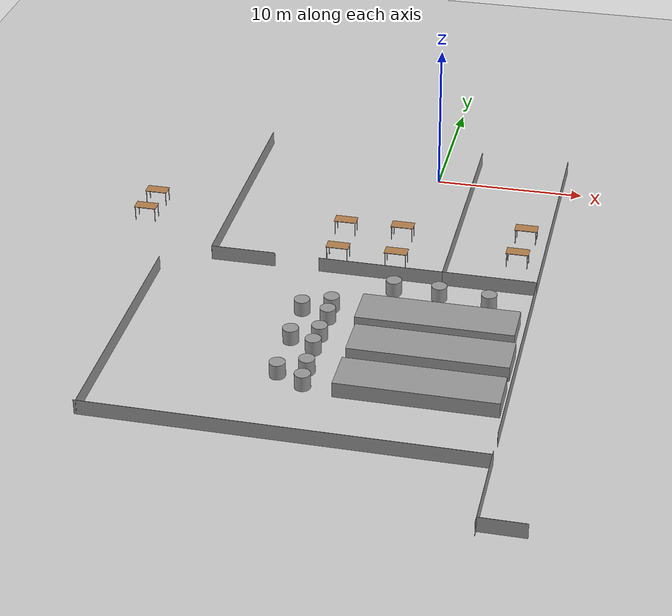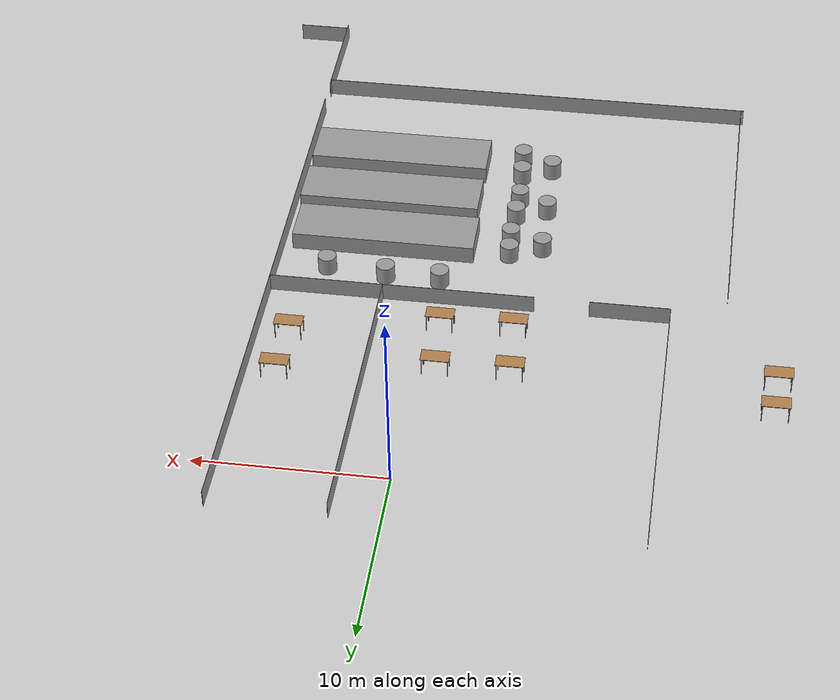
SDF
<sdf version="1.6">
 <world name="default">
  <model name="ground_plane">
   <static>1</static>
   <link name="link">
    <collision name="collision">
     <geometry><plane><normal>0 0 1</normal><size>100 100</size></plane></geometry>
     <surface>
      <contact><collide_bitmask>65535</collide_bitmask></contact>
      <friction><ode><mu>100</mu><mu2>50</mu2></ode></friction>
     </surface>
    </collision>
    <visual name="visual">
     <cast_shadows>0</cast_shadows>
     <geometry><plane><normal>0 0 1</normal><size>100 100</size></plane></geometry>
     <material>
      <script><uri>file://media/materials/scripts/gazebo.material</uri><name>Gazebo/Grey</name></script>
     </material>
    </visual>
   </link>
  </model>
  <model name="unit_box">
   <static>1</static>
   <pose>8.66348 -5.199 0.5 0 -0 0</pose>
   <link name="link">
    <inertial>
     <mass>1</mass>
     <inertia>
      <ixx>0.166667</ixx>
      <ixy>0</ixy>
      <ixz>0</ixz>
      <iyy>0.166667</iyy>
      <iyz>0</iyz>
      <izz>0.166667</izz>
     </inertia>
    </inertial>
    <collision name="collision"><geometry><box><size>0.01642 16.3082 1</size></box></geometry></collision>
    <visual name="visual">
     <geometry><box><size>0.01642 16.3082 1</size></box></geometry>
     <material>
      <script><name>Gazebo/Grey</name><uri>file://media/materials/scripts/gazebo.material</uri></script>
     </material>
    </visual>
   </link>
  </model>
  <model name="unit_box_0">
   <static>1</static>
   <pose>5.618314 -13.282811 0.5 0 -0 0</pose>
   <link name="link">
    <inertial>
     <mass>1</mass>
     <inertia>
      <ixx>0.166667</ixx>
      <ixy>0</ixy>
      <ixz>0</ixz>
      <iyy>0.166667</iyy>
      <iyz>0</iyz>
      <izz>0.166667</izz>
     </inertia>
    </inertial>
    <collision name="collision"><geometry><box><size>6.0747 0.010616 1</size></box></geometry></collision>
    <visual name="visual">
     <geometry><box><size>6.0747 0.010616 1</size></box></geometry>
     <material>
      <script><name>Gazebo/Grey</name><uri>file://media/materials/scripts/gazebo.material</uri></script>
     </material>
    </visual>
   </link>
  </model>
  <model name="unit_box_0_clone">
   <static>1</static>
   <pose>2.57442 -5.17191 0.5 0 -0 0</pose>
   <link name="link">
    <inertial>
     <mass>1</mass>
     <inertia>
      <ixx>0.166667</ixx>
      <ixy>0</ixy>
      <ixz>0</ixz>
      <iyy>0.166667</iyy>
      <iyz>0</iyz>
      <izz>0.166667</izz>
     </inertia>
    </inertial>
    <collision name="collision"><geometry><box><size>0.015785 16.224 1</size></box></geometry></collision>
    <visual name="visual">
     <geometry><box><size>0.015785 16.224 1</size></box></geometry>
     <material>
      <script><name>Gazebo/Grey</name><uri>file://media/materials/scripts/gazebo.material</uri></script>
     </material>
    </visual>
   </link>
  </model>
  <model name="unit_box_clone_clone_clone">
   <static>1</static>
   <pose>-1.4868 -13.287 0.5 0 -0 0</pose>
   <link name="link">
    <inertial>
     <mass>1</mass>
     <inertia>
      <ixx>0.166667</ixx>
      <ixy>0</ixy>
      <ixz>0</ixz>
      <iyy>0.166667</iyy>
      <iyz>0</iyz>
      <izz>0.166667</izz>
     </inertia>
    </inertial>
    <collision name="collision"><geometry><box><size>8.11356 0.014042 1</size></box></geometry></collision>
    <visual name="visual">
     <geometry><box><size>8.11356 0.014042 1</size></box></geometry>
     <material>
      <script><name>Gazebo/Grey</name><uri>file://media/materials/scripts/gazebo.material</uri></script>
     </material>
    </visual>
   </link>
  </model>
  <model name="unit_box_0_clone_clone">
   <static>1</static>
   <pose>-12.7381 -5.17234 0.5 0 -0 0</pose>
   <link name="link">
    <inertial>
     <mass>1</mass>
     <inertia>
      <ixx>0.166667</ixx>
      <ixy>0</ixy>
      <ixz>0</ixz>
      <iyy>0.166667</iyy>
      <iyz>0</iyz>
      <izz>0.166667</izz>
     </inertia>
    </inertial>
    <collision name="collision"><geometry><box><size>0.015785 16.224 1</size></box></geometry></collision>
    <visual name="visual">
     <geometry><box><size>0.015785 16.224 1</size></box></geometry>
     <material>
      <script><name>Gazebo/Grey</name><uri>file://media/materials/scripts/gazebo.material</uri></script>
     </material>
    </visual>
   </link>
  </model>
  <model name="unit_box_clone_clone_clone_2">
   <static>1</static>
   <pose>-3.5869 -31.4552 0.5 0 -0 0</pose>
   <link name="link">
    <inertial>
     <mass>1</mass>
     <inertia>
      <ixx>0.166667</ixx>
      <ixy>0</ixy>
      <ixz>0</ixz>
      <iyy>0.166667</iyy>
      <iyz>0</iyz>
      <izz>0.166667</izz>
     </inertia>
    </inertial>
    <collision name="collision"><geometry><box><size>24.508914 0.014042 1</size></box></geometry></collision>
    <visual name="visual">
     <geometry><box><size>24.5098914 0.014042 1</size></box></geometry>
     <material>
      <script><name>Gazebo/Grey</name><uri>file://media/materials/scripts/gazebo.material</uri></script>
     </material>
    </visual>
   </link>
  </model>
  <model name="unit_box_0_clone_clone_0_clone">
   <static>1</static>
   <pose>8.66604 -21.3952 0.5 0 -0 0</pose>
   <link name="link">
    <inertial>
     <mass>1</mass>
     <inertia>
      <ixx>0.166667</ixx>
      <ixy>0</ixy>
      <ixz>0</ixz>
      <iyy>0.166667</iyy>
      <iyz>0</iyz>
      <izz>0.166667</izz>
     </inertia>
    </inertial>
    <collision name="collision"><geometry><box><size>0.015785 16.224 1</size></box></geometry></collision>
    <visual name="visual">
     <geometry><box><size>0.015785 16.224 1</size></box></geometry>
     <material>
      <script><name>Gazebo/Grey</name><uri>file://media/materials/scripts/gazebo.material</uri></script>
     </material>
    </visual>
   </link>
  </model>
  <model name="unit_box_0_clone_clone_0_clone_clone">
   <static>1</static>
   <pose>8.66561 -34.2292 0.5 0 -0 0</pose>
   <link name="link">
    <inertial>
     <mass>1</mass>
     <inertia>
      <ixx>0.166667</ixx>
      <ixy>0</ixy>
      <ixz>0</ixz>
      <iyy>0.166667</iyy>
      <iyz>0</iyz>
      <izz>0.166667</izz>
     </inertia>
    </inertial>
    <collision name="collision"><geometry><box><size>0.015785 6.33435 1</size></box></geometry></collision>
    <visual name="visual">
     <geometry><box><size>0.015785 6.33435 1</size></box></geometry>
     <material>
      <script><name>Gazebo/Grey</name><uri>file://media/materials/scripts/gazebo.material</uri></script>
     </material>
    </visual>
   </link>
  </model>
  <model name="unit_box_clone_clone_clone_2_clone">
   <static>1</static>
   <pose>10.0717 -37.0022 0.5 0 -0 0</pose>
   <link name="link">
    <inertial>
     <mass>1</mass>
     <inertia>
      <ixx>0.166667</ixx>
      <ixy>0</ixy>
      <ixz>0</ixz>
      <iyy>0.166667</iyy>
      <iyz>0</iyz>
      <izz>0.166667</izz>
     </inertia>
    </inertial>
    <collision name="collision"><geometry><box><size>2.80525 0.014042 1</size></box></geometry></collision>
    <visual name="visual">
     <geometry><box><size>2.80525 0.014042 1</size></box></geometry>
     <material>
      <script><name>Gazebo/Grey</name><uri>file://media/materials/scripts/gazebo.material</uri></script>
     </material>
    </visual>
   </link>
  </model>
  <model name="unit_box_0_clone_clone_0_clone_0">
   <static>1</static>
   <pose>-15.6926 -23.3512 0.5 0 -0 0</pose>
   <link name="link">
    <inertial>
     <mass>1</mass>
     <inertia>
      <ixx>0.166667</ixx>
      <ixy>0</ixy>
      <ixz>0</ixz>
      <iyy>0.166667</iyy>
      <iyz>0</iyz>
      <izz>0.166667</izz>
     </inertia>
    </inertial>
    <collision name="collision"><geometry><box><size>0.015785 16.224 1</size></box></geometry></collision>
    <visual name="visual">
     <geometry><box><size>0.015785 16.224 1</size></box></geometry>
     <material>
      <script><name>Gazebo/Grey</name><uri>file://media/materials/scripts/gazebo.material</uri></script>
     </material>
    </visual>
   </link>
  </model>
  <model name="unit_box_clone_clone_clone_clone">
   <static>1</static>
   <pose>-10.6005 -13.2814 0.5 0 -0 0</pose>
   <link name="link">
    <inertial>
     <mass>1</mass>
     <inertia>
      <ixx>0.166667</ixx>
      <ixy>0</ixy>
      <ixz>0</ixz>
      <iyy>0.166667</iyy>
      <iyz>0</iyz>
      <izz>0.166667</izz>
     </inertia>
    </inertial>
    <collision name="collision"><geometry><box><size>4.2743 0.014042 1</size></box></geometry></collision>
    <visual name="visual">
     <geometry><box><size>4.2743 0.014042 1</size></box></geometry>
     <material>
      <script><name>Gazebo/Grey</name><uri>file://media/materials/scripts/gazebo.material</uri></script>
     </material>
    </visual>
   </link>
  </model>
  <model name="unit_box_2_clone">
   <static>1</static>
   <pose>3.38689 -21.6455 0.5 0 -0 0</pose>
   <link name="link">
    <inertial>
     <mass>1</mass>
     <inertia>
      <ixx>0.166667</ixx>
      <ixy>0</ixy>
      <ixz>0</ixz>
      <iyy>0.166667</iyy>
      <iyz>0</iyz>
      <izz>0.166667</izz>
     </inertia>
    </inertial>
    <collision name="collision"><geometry><box><size>9.96993 2.71748 1</size></box></geometry></collision>
    <visual name="visual">
     <geometry><box><size>9.96993 2.71748 1</size></box></geometry>
     <material>
      <script><name>Gazebo/Grey</name><uri>file://media/materials/scripts/gazebo.material</uri></script>
     </material>
    </visual>
   </link>
  </model>
  <model name="unit_box_2_clone_0">
   <static>1</static>
   <pose>3.39312 -25.3306 0.5 0 -0 0</pose>
   <link name="link">
    <inertial>
     <mass>1</mass>
     <inertia>
      <ixx>0.166667</ixx>
      <ixy>0</ixy>
      <ixz>0</ixz>
      <iyy>0.166667</iyy>
      <iyz>0</iyz>
      <izz>0.166667</izz>
     </inertia>
    </inertial>
    <collision name="collision"><geometry><box><size>9.96993 2.71748 1</size></box></geometry></collision>
    <visual name="visual">
     <geometry><box><size>9.96993 2.71748 1</size></box></geometry>
     <material>
      <script><name>Gazebo/Grey</name><uri>file://media/materials/scripts/gazebo.material</uri></script>
     </material>
    </visual>
   </link>
  </model>
  <model name="unit_cylinder">
   <static>1</static>
   <pose>-3.70662 -17.5343 0.5 0 -0 0</pose>
   <link name="link">
    <inertial>
     <mass>1</mass>
     <inertia><ixx>0.145833</ixx><ixy>0</ixy><ixz>0</ixz><iyy>0.145833</iyy><iyz>0</iyz><izz>0.125</izz></inertia>
    </inertial>
    <collision name="collision">
     <geometry><cylinder><radius>0.5</radius><length>1</length></cylinder></geometry>
    </collision>
    <visual name="visual">
     <geometry><cylinder><radius>0.5</radius><length>1</length></cylinder></geometry>
     <material>
      <script><name>Gazebo/Grey</name><uri>file://media/materials/scripts/gazebo.material</uri></script>
     </material>
    </visual>
   </link>
  </model>
  <model name="unit_box_2_clone_1">
   <static>1</static>
   <pose>3.17488 -18.2078 0.5 0 -0 0</pose>
   <link name="link">
    <inertial>
     <mass>1</mass>
     <inertia>
      <ixx>0.166667</ixx>
      <ixy>0</ixy>
      <ixz>0</ixz>
      <iyy>0.166667</iyy>
      <iyz>0</iyz>
      <izz>0.166667</izz>
     </inertia>
    </inertial>
    <collision name="collision"><geometry><box><size>9.96993 2.71748 1</size></box></geometry></collision>
    <visual name="visual">
     <geometry><box><size>9.96993 2.71748 1</size></box></geometry>
     <material>
      <script><name>Gazebo/Grey</name><uri>file://media/materials/scripts/gazebo.material</uri></script>
     </material>
    </visual>
   </link>
  </model>
  <model name="unit_cylinder_0">
   <static>1</static>
   <pose>-3.64243 -18.8883 0.5 0 -0 0</pose>
   <link name="link">
    <inertial>
     <mass>1</mass>
     <inertia><ixx>0.145833</ixx><ixy>0</ixy><ixz>0</ixz><iyy>0.145833</iyy><iyz>0</iyz><izz>0.125</izz></inertia>
    </inertial>
    <collision name="collision">
     <geometry><cylinder><radius>0.5</radius><length>1</length></cylinder></geometry>
    </collision>
    <visual name="visual">
     <geometry><cylinder><radius>0.5</radius><length>1</length></cylinder></geometry>
     <material>
      <script><name>Gazebo/Grey</name><uri>file://media/materials/scripts/gazebo.material</uri></script>
     </material>
    </visual>
   </link>
  </model>
  <model name="unit_cylinder_1">
   <static>1</static>
   <pose>-3.69554 -20.8721 0.5 0 -0 0</pose>
   <link name="link">
    <inertial>
     <mass>1</mass>
     <inertia><ixx>0.145833</ixx><ixy>0</ixy><ixz>0</ixz><iyy>0.145833</iyy><iyz>0</iyz><izz>0.125</izz></inertia>
    </inertial>
    <collision name="collision">
     <geometry><cylinder><radius>0.5</radius><length>1</length></cylinder></geometry>
    </collision>
    <visual name="visual">
     <geometry><cylinder><radius>0.5</radius><length>1</length></cylinder></geometry>
     <material>
      <script><name>Gazebo/Grey</name><uri>file://media/materials/scripts/gazebo.material</uri></script>
     </material>
    </visual>
   </link>
  </model>
  <model name="unit_cylinder_2">
   <static>1</static>
   <pose>-3.74181 -22.3743 0.5 0 -0 0</pose>
   <link name="link">
    <inertial>
     <mass>1</mass>
     <inertia><ixx>0.145833</ixx><ixy>0</ixy><ixz>0</ixz><iyy>0.145833</iyy><iyz>0</iyz><izz>0.125</izz></inertia>
    </inertial>
    <collision name="collision">
     <geometry><cylinder><radius>0.5</radius><length>1</length></cylinder></geometry>
    </collision>
    <visual name="visual">
     <geometry><cylinder><radius>0.5</radius><length>1</length></cylinder></geometry>
     <material>
      <script><name>Gazebo/Grey</name><uri>file://media/materials/scripts/gazebo.material</uri></script>
     </material>
    </visual>
   </link>
  </model>
  <model name="unit_cylinder_3">
   <static>1</static>
   <pose>-3.61846 -24.5139 0.5 0 -0 0</pose>
   <link name="link">
    <inertial>
     <mass>1</mass>
     <inertia><ixx>0.145833</ixx><ixy>0</ixy><ixz>0</ixz><iyy>0.145833</iyy><iyz>0</iyz><izz>0.125</izz></inertia>
    </inertial>
    <collision name="collision">
     <geometry><cylinder><radius>0.5</radius><length>1</length></cylinder></geometry>
    </collision>
    <visual name="visual">
     <geometry><cylinder><radius>0.5</radius><length>1</length></cylinder></geometry>
     <material>
      <script><name>Gazebo/Grey</name><uri>file://media/materials/scripts/gazebo.material</uri></script>
     </material>
    </visual>
   </link>
  </model>
  <model name="unit_cylinder_4">
   <static>1</static>
   <pose>-3.51145 -26.0798 0.5 0 -0 0</pose>
   <link name="link">
    <inertial>
     <mass>1</mass>
     <inertia><ixx>0.145833</ixx><ixy>0</ixy><ixz>0</ixz><iyy>0.145833</iyy><iyz>0</iyz><izz>0.125</izz></inertia>
    </inertial>
    <collision name="collision">
     <geometry><cylinder><radius>0.5</radius><length>1</length></cylinder></geometry>
    </collision>
    <visual name="visual">
     <geometry><cylinder><radius>0.5</radius><length>1</length></cylinder></geometry>
     <material>
      <script><name>Gazebo/Grey</name><uri>file://media/materials/scripts/gazebo.material</uri></script>
     </material>
    </visual>
   </link>
  </model>
  <model name="unit_cylinder_5">
   <static>1</static>
   <pose>-5.25341 -25.2441 0.5 0 -0 0</pose>
   <link name="link">
    <inertial>
     <mass>1</mass>
     <inertia><ixx>0.145833</ixx><ixy>0</ixy><ixz>0</ixz><iyy>0.145833</iyy><iyz>0</iyz><izz>0.125</izz></inertia>
    </inertial>
    <collision name="collision">
     <geometry><cylinder><radius>0.5</radius><length>1</length></cylinder></geometry>
    </collision>
    <visual name="visual">
     <geometry><cylinder><radius>0.5</radius><length>1</length></cylinder></geometry>
     <material>
      <script><name>Gazebo/Grey</name><uri>file://media/materials/scripts/gazebo.material</uri></script>
     </material>
    </visual>
   </link>
  </model>
  <model name="unit_cylinder_6">
   <static>1</static>
   <pose>-5.35973 -21.5436 0.5 0 -0 0</pose>
   <link name="link">
    <inertial>
     <mass>1</mass>
     <inertia><ixx>0.145833</ixx><ixy>0</ixy><ixz>0</ixz><iyy>0.145833</iyy><iyz>0</iyz><izz>0.125</izz></inertia>
    </inertial>
    <collision name="collision">
     <geometry><cylinder><radius>0.5</radius><length>1</length></cylinder></geometry>
    </collision>
    <visual name="visual">
     <geometry><cylinder><radius>0.5</radius><length>1</length></cylinder></geometry>
     <material>
      <script><name>Gazebo/Grey</name><uri>file://media/materials/scripts/gazebo.material</uri></script>
     </material>
    </visual>
   </link>
  </model>
  <model name="unit_cylinder_7">
   <static>1</static>
   <pose>-5.43922 -18.2611 0.5 0 -0 0</pose>
   <link name="link">
    <inertial>
     <mass>1</mass>
     <inertia><ixx>0.145833</ixx><ixy>0</ixy><ixz>0</ixz><iyy>0.145833</iyy><iyz>0</iyz><izz>0.125</izz></inertia>
    </inertial>
    <collision name="collision">
     <geometry><cylinder><radius>0.5</radius><length>1</length></cylinder></geometry>
    </collision>
    <visual name="visual">
     <geometry><cylinder><radius>0.5</radius><length>1</length></cylinder></geometry>
     <material>
      <script><name>Gazebo/Grey</name><uri>file://media/materials/scripts/gazebo.material</uri></script>
     </material>
    </visual>
   </link>
  </model>
  <model name="unit_cylinder_8">
   <static>1</static>
   <pose>5.92844 -15.2859 0.5 0 -0 0</pose>
   <link name="link">
    <inertial>
     <mass>1</mass>
     <inertia><ixx>0.145833</ixx><ixy>0</ixy><ixz>0</ixz><iyy>0.145833</iyy><iyz>0</iyz><izz>0.125</izz></inertia>
    </inertial>
    <collision name="collision">
     <geometry><cylinder><radius>0.5</radius><length>1</length></cylinder></geometry>
    </collision>
    <visual name="visual">
     <geometry><cylinder><radius>0.5</radius><length>1</length></cylinder></geometry>
     <material>
      <script><name>Gazebo/Grey</name><uri>file://media/materials/scripts/gazebo.material</uri></script>
     </material>
    </visual>
   </link>
  </model>
  <model name="unit_cylinder_9">
   <static>1</static>
   <pose>2.68798 -14.9483 0.5 0 -0 0</pose>
   <link name="link">
    <inertial>
     <mass>1</mass>
     <inertia><ixx>0.145833</ixx><ixy>0</ixy><ixz>0</ixz><iyy>0.145833</iyy><iyz>0</iyz><izz>0.125</izz></inertia>
    </inertial>
    <collision name="collision">
     <geometry><cylinder><radius>0.5</radius><length>1</length></cylinder></geometry>
    </collision>
    <visual name="visual">
     <geometry><cylinder><radius>0.5</radius><length>1</length></cylinder></geometry>
     <material>
      <script><name>Gazebo/Grey</name><uri>file://media/materials/scripts/gazebo.material</uri></script>
     </material>
    </visual>
   </link>
  </model>
  <model name="unit_cylinder_10">
   <static>1</static>
   <pose>-0.255446 -14.8863 0.5 0 -0 0</pose>
   <link name="link">
    <inertial>
     <mass>1</mass>
     <inertia><ixx>0.145833</ixx><ixy>0</ixy><ixz>0</ixz><iyy>0.145833</iyy><iyz>0</iyz><izz>0.125</izz></inertia>
    </inertial>
    <collision name="collision">
     <geometry><cylinder><radius>0.5</radius><length>1</length></cylinder></geometry>
    </collision>
    <visual name="visual">
     <geometry><cylinder><radius>0.5</radius><length>1</length></cylinder></geometry>
     <material>
      <script><name>Gazebo/Grey</name><uri>file://media/materials/scripts/gazebo.material</uri></script>
     </material>
    </visual>
   </link>
  </model>
  <model name="table_clone_26">
   <static>1</static>
   <link name="link">
    <collision name="surface">
     <pose>0 0 1 0 -0 0</pose>
     <geometry><box><size>1.5 0.8 0.03</size></box></geometry>
     <surface><friction><ode><mu>0.6</mu><mu2>0.6</mu2></ode></friction></surface>
    </collision>
    <visual name="visual1">
     <pose>0 0 1 0 -0 0</pose>
     <geometry><box><size>1.5 0.8 0.03</size></box></geometry>
     <material>
      <script><uri>file://media/materials/scripts/gazebo.material</uri><name>Gazebo/Wood</name></script>
     </material>
    </visual>
    <collision name="front_left_leg">
     <pose>0.68 0.38 0.5 0 -0 0</pose>
     <geometry><cylinder><radius>0.02</radius><length>1</length></cylinder></geometry>
    </collision>
    <visual name="front_left_leg">
     <pose>0.68 0.38 0.5 0 -0 0</pose>
     <geometry><cylinder><radius>0.02</radius><length>1</length></cylinder></geometry>
     <material>
      <script><uri>file://media/materials/scripts/gazebo.material</uri><name>Gazebo/Grey</name></script>
     </material>
    </visual>
    <collision name="front_right_leg">
     <pose>0.68 -0.38 0.5 0 -0 0</pose>
     <geometry><cylinder><radius>0.02</radius><length>1</length></cylinder></geometry>
    </collision>
    <visual name="front_right_leg">
     <pose>0.68 -0.38 0.5 0 -0 0</pose>
     <geometry><cylinder><radius>0.02</radius><length>1</length></cylinder></geometry>
     <material>
      <script><uri>file://media/materials/scripts/gazebo.material</uri><name>Gazebo/Grey</name></script>
     </material>
    </visual>
    <collision name="back_right_leg">
     <pose>-0.68 -0.38 0.5 0 -0 0</pose>
     <geometry><cylinder><radius>0.02</radius><length>1</length></cylinder></geometry>
    </collision>
    <visual name="back_right_leg">
     <pose>-0.68 -0.38 0.5 0 -0 0</pose>
     <geometry><cylinder><radius>0.02</radius><length>1</length></cylinder></geometry>
     <material>
      <script><uri>file://media/materials/scripts/gazebo.material</uri><name>Gazebo/Grey</name></script>
     </material>
    </visual>
    <collision name="back_left_leg">
     <pose>-0.68 0.38 0.5 0 -0 0</pose>
     <geometry><cylinder><radius>0.02</radius><length>1</length></cylinder></geometry>
    </collision>
    <visual name="back_left_leg">
     <pose>-0.68 0.38 0.5 0 -0 0</pose>
     <geometry><cylinder><radius>0.02</radius><length>1</length></cylinder></geometry>
     <material>
      <script><uri>file://media/materials/scripts/gazebo.material</uri><name>Gazebo/Grey</name></script>
     </material>
    </visual>
   </link>
   <pose>-18.4319 -6.8833 0 0 -0 0</pose>
  </model>
  <model name="table_clone_27">
   <static>1</static>
   <link name="link">
    <collision name="surface">
     <pose>0 0 1 0 -0 0</pose>
     <geometry><box><size>1.5 0.8 0.03</size></box></geometry>
     <surface><friction><ode><mu>0.6</mu><mu2>0.6</mu2></ode></friction></surface>
    </collision>
    <visual name="visual1">
     <pose>0 0 1 0 -0 0</pose>
     <geometry><box><size>1.5 0.8 0.03</size></box></geometry>
     <material>
      <script><uri>file://media/materials/scripts/gazebo.material</uri><name>Gazebo/Wood</name></script>
     </material>
    </visual>
    <collision name="front_left_leg">
     <pose>0.68 0.38 0.5 0 -0 0</pose>
     <geometry><cylinder><radius>0.02</radius><length>1</length></cylinder></geometry>
    </collision>
    <visual name="front_left_leg">
     <pose>0.68 0.38 0.5 0 -0 0</pose>
     <geometry><cylinder><radius>0.02</radius><length>1</length></cylinder></geometry>
     <material>
      <script><uri>file://media/materials/scripts/gazebo.material</uri><name>Gazebo/Grey</name></script>
     </material>
    </visual>
    <collision name="front_right_leg">
     <pose>0.68 -0.38 0.5 0 -0 0</pose>
     <geometry><cylinder><radius>0.02</radius><length>1</length></cylinder></geometry>
    </collision>
    <visual name="front_right_leg">
     <pose>0.68 -0.38 0.5 0 -0 0</pose>
     <geometry><cylinder><radius>0.02</radius><length>1</length></cylinder></geometry>
     <material>
      <script><uri>file://media/materials/scripts/gazebo.material</uri><name>Gazebo/Grey</name></script>
     </material>
    </visual>
    <collision name="back_right_leg">
     <pose>-0.68 -0.38 0.5 0 -0 0</pose>
     <geometry><cylinder><radius>0.02</radius><length>1</length></cylinder></geometry>
    </collision>
    <visual name="back_right_leg">
     <pose>-0.68 -0.38 0.5 0 -0 0</pose>
     <geometry><cylinder><radius>0.02</radius><length>1</length></cylinder></geometry>
     <material>
      <script><uri>file://media/materials/scripts/gazebo.material</uri><name>Gazebo/Grey</name></script>
     </material>
    </visual>
    <collision name="back_left_leg">
     <pose>-0.68 0.38 0.5 0 -0 0</pose>
     <geometry><cylinder><radius>0.02</radius><length>1</length></cylinder></geometry>
    </collision>
    <visual name="back_left_leg">
     <pose>-0.68 0.38 0.5 0 -0 0</pose>
     <geometry><cylinder><radius>0.02</radius><length>1</length></cylinder></geometry>
     <material>
      <script><uri>file://media/materials/scripts/gazebo.material</uri><name>Gazebo/Grey</name></script>
     </material>
    </visual>
   </link>
   <pose>-18.5084 -9.13084 0 0 -0 0</pose>
  </model>
  <model name="table_clone_19_clone_0">
   <static>1</static>
   <link name="link">
    <collision name="surface">
     <pose>0 0 1 0 -0 0</pose>
     <geometry><box><size>1.5 0.8 0.03</size></box></geometry>
     <surface><friction><ode><mu>0.6</mu><mu2>0.6</mu2></ode></friction></surface>
    </collision>
    <visual name="visual1">
     <pose>0 0 1 0 -0 0</pose>
     <geometry><box><size>1.5 0.8 0.03</size></box></geometry>
     <material>
      <script><uri>file://media/materials/scripts/gazebo.material</uri><name>Gazebo/Wood</name></script>
     </material>
    </visual>
    <collision name="front_left_leg">
     <pose>0.68 0.38 0.5 0 -0 0</pose>
     <geometry><cylinder><radius>0.02</radius><length>1</length></cylinder></geometry>
    </collision>
    <visual name="front_left_leg">
     <pose>0.68 0.38 0.5 0 -0 0</pose>
     <geometry><cylinder><radius>0.02</radius><length>1</length></cylinder></geometry>
     <material>
      <script><uri>file://media/materials/scripts/gazebo.material</uri><name>Gazebo/Grey</name></script>
     </material>
    </visual>
    <collision name="front_right_leg">
     <pose>0.68 -0.38 0.5 0 -0 0</pose>
     <geometry><cylinder><radius>0.02</radius><length>1</length></cylinder></geometry>
    </collision>
    <visual name="front_right_leg">
     <pose>0.68 -0.38 0.5 0 -0 0</pose>
     <geometry><cylinder><radius>0.02</radius><length>1</length></cylinder></geometry>
     <material>
      <script><uri>file://media/materials/scripts/gazebo.material</uri><name>Gazebo/Grey</name></script>
     </material>
    </visual>
    <collision name="back_right_leg">
     <pose>-0.68 -0.38 0.5 0 -0 0</pose>
     <geometry><cylinder><radius>0.02</radius><length>1</length></cylinder></geometry>
    </collision>
    <visual name="back_right_leg">
     <pose>-0.68 -0.38 0.5 0 -0 0</pose>
     <geometry><cylinder><radius>0.02</radius><length>1</length></cylinder></geometry>
     <material>
      <script><uri>file://media/materials/scripts/gazebo.material</uri><name>Gazebo/Grey</name></script>
     </material>
    </visual>
    <collision name="back_left_leg">
     <pose>-0.68 0.38 0.5 0 -0 0</pose>
     <geometry><cylinder><radius>0.02</radius><length>1</length></cylinder></geometry>
    </collision>
    <visual name="back_left_leg">
     <pose>-0.68 0.38 0.5 0 -0 0</pose>
     <geometry><cylinder><radius>0.02</radius><length>1</length></cylinder></geometry>
     <material>
      <script><uri>file://media/materials/scripts/gazebo.material</uri><name>Gazebo/Grey</name></script>
     </material>
    </visual>
   </link>
   <pose>-1.02607 -8.04821 0 0 -0 0</pose>
  </model>
  <model name="table_clone_19_clone_1">
   <static>1</static>
   <link name="link">
    <collision name="surface">
     <pose>0 0 1 0 -0 0</pose>
     <geometry><box><size>1.5 0.8 0.03</size></box></geometry>
     <surface><friction><ode><mu>0.6</mu><mu2>0.6</mu2></ode></friction></surface>
    </collision>
    <visual name="visual1">
     <pose>0 0 1 0 -0 0</pose>
     <geometry><box><size>1.5 0.8 0.03</size></box></geometry>
     <material>
      <script><uri>file://media/materials/scripts/gazebo.material</uri><name>Gazebo/Wood</name></script>
     </material>
    </visual>
    <collision name="front_left_leg">
     <pose>0.68 0.38 0.5 0 -0 0</pose>
     <geometry><cylinder><radius>0.02</radius><length>1</length></cylinder></geometry>
    </collision>
    <visual name="front_left_leg">
     <pose>0.68 0.38 0.5 0 -0 0</pose>
     <geometry><cylinder><radius>0.02</radius><length>1</length></cylinder></geometry>
     <material>
      <script><uri>file://media/materials/scripts/gazebo.material</uri><name>Gazebo/Grey</name></script>
     </material>
    </visual>
    <collision name="front_right_leg">
     <pose>0.68 -0.38 0.5 0 -0 0</pose>
     <geometry><cylinder><radius>0.02</radius><length>1</length></cylinder></geometry>
    </collision>
    <visual name="front_right_leg">
     <pose>0.68 -0.38 0.5 0 -0 0</pose>
     <geometry><cylinder><radius>0.02</radius><length>1</length></cylinder></geometry>
     <material>
      <script><uri>file://media/materials/scripts/gazebo.material</uri><name>Gazebo/Grey</name></script>
     </material>
    </visual>
    <collision name="back_right_leg">
     <pose>-0.68 -0.38 0.5 0 -0 0</pose>
     <geometry><cylinder><radius>0.02</radius><length>1</length></cylinder></geometry>
    </collision>
    <visual name="back_right_leg">
     <pose>-0.68 -0.38 0.5 0 -0 0</pose>
     <geometry><cylinder><radius>0.02</radius><length>1</length></cylinder></geometry>
     <material>
      <script><uri>file://media/materials/scripts/gazebo.material</uri><name>Gazebo/Grey</name></script>
     </material>
    </visual>
    <collision name="back_left_leg">
     <pose>-0.68 0.38 0.5 0 -0 0</pose>
     <geometry><cylinder><radius>0.02</radius><length>1</length></cylinder></geometry>
    </collision>
    <visual name="back_left_leg">
     <pose>-0.68 0.38 0.5 0 -0 0</pose>
     <geometry><cylinder><radius>0.02</radius><length>1</length></cylinder></geometry>
     <material>
      <script><uri>file://media/materials/scripts/gazebo.material</uri><name>Gazebo/Grey</name></script>
     </material>
    </visual>
   </link>
   <pose>-0.794782 -11.4087 0 0 -0 0</pose>
  </model>
  <model name="table_clone_19_clone_3">
   <static>1</static>
   <link name="link">
    <collision name="surface">
     <pose>0 0 1 0 -0 0</pose>
     <geometry><box><size>1.5 0.8 0.03</size></box></geometry>
     <surface><friction><ode><mu>0.6</mu><mu2>0.6</mu2></ode></friction></surface>
    </collision>
    <visual name="visual1">
     <pose>0 0 1 0 -0 0</pose>
     <geometry><box><size>1.5 0.8 0.03</size></box></geometry>
     <material>
      <script><uri>file://media/materials/scripts/gazebo.material</uri><name>Gazebo/Wood</name></script>
     </material>
    </visual>
    <collision name="front_left_leg">
     <pose>0.68 0.38 0.5 0 -0 0</pose>
     <geometry><cylinder><radius>0.02</radius><length>1</length></cylinder></geometry>
    </collision>
    <visual name="front_left_leg">
     <pose>0.68 0.38 0.5 0 -0 0</pose>
     <geometry><cylinder><radius>0.02</radius><length>1</length></cylinder></geometry>
     <material>
      <script><uri>file://media/materials/scripts/gazebo.material</uri><name>Gazebo/Grey</name></script>
     </material>
    </visual>
    <collision name="front_right_leg">
     <pose>0.68 -0.38 0.5 0 -0 0</pose>
     <geometry><cylinder><radius>0.02</radius><length>1</length></cylinder></geometry>
    </collision>
    <visual name="front_right_leg">
     <pose>0.68 -0.38 0.5 0 -0 0</pose>
     <geometry><cylinder><radius>0.02</radius><length>1</length></cylinder></geometry>
     <material>
      <script><uri>file://media/materials/scripts/gazebo.material</uri><name>Gazebo/Grey</name></script>
     </material>
    </visual>
    <collision name="back_right_leg">
     <pose>-0.68 -0.38 0.5 0 -0 0</pose>
     <geometry><cylinder><radius>0.02</radius><length>1</length></cylinder></geometry>
    </collision>
    <visual name="back_right_leg">
     <pose>-0.68 -0.38 0.5 0 -0 0</pose>
     <geometry><cylinder><radius>0.02</radius><length>1</length></cylinder></geometry>
     <material>
      <script><uri>file://media/materials/scripts/gazebo.material</uri><name>Gazebo/Grey</name></script>
     </material>
    </visual>
    <collision name="back_left_leg">
     <pose>-0.68 0.38 0.5 0 -0 0</pose>
     <geometry><cylinder><radius>0.02</radius><length>1</length></cylinder></geometry>
    </collision>
    <visual name="back_left_leg">
     <pose>-0.68 0.38 0.5 0 -0 0</pose>
     <geometry><cylinder><radius>0.02</radius><length>1</length></cylinder></geometry>
     <material>
      <script><uri>file://media/materials/scripts/gazebo.material</uri><name>Gazebo/Grey</name></script>
     </material>
    </visual>
   </link>
   <pose>-4.87773 -8.13087 0 0 -0 0</pose>
  </model>
  <model name="table_clone_19_clone_4">
   <static>1</static>
   <link name="link">
    <collision name="surface">
     <pose>0 0 1 0 -0 0</pose>
     <geometry><box><size>1.5 0.8 0.03</size></box></geometry>
     <surface><friction><ode><mu>0.6</mu><mu2>0.6</mu2></ode></friction></surface>
    </collision>
    <visual name="visual1">
     <pose>0 0 1 0 -0 0</pose>
     <geometry><box><size>1.5 0.8 0.03</size></box></geometry>
     <material>
      <script><uri>file://media/materials/scripts/gazebo.material</uri><name>Gazebo/Wood</name></script>
     </material>
    </visual>
    <collision name="front_left_leg">
     <pose>0.68 0.38 0.5 0 -0 0</pose>
     <geometry><cylinder><radius>0.02</radius><length>1</length></cylinder></geometry>
    </collision>
    <visual name="front_left_leg">
     <pose>0.68 0.38 0.5 0 -0 0</pose>
     <geometry><cylinder><radius>0.02</radius><length>1</length></cylinder></geometry>
     <material>
      <script><uri>file://media/materials/scripts/gazebo.material</uri><name>Gazebo/Grey</name></script>
     </material>
    </visual>
    <collision name="front_right_leg">
     <pose>0.68 -0.38 0.5 0 -0 0</pose>
     <geometry><cylinder><radius>0.02</radius><length>1</length></cylinder></geometry>
    </collision>
    <visual name="front_right_leg">
     <pose>0.68 -0.38 0.5 0 -0 0</pose>
     <geometry><cylinder><radius>0.02</radius><length>1</length></cylinder></geometry>
     <material>
      <script><uri>file://media/materials/scripts/gazebo.material</uri><name>Gazebo/Grey</name></script>
     </material>
    </visual>
    <collision name="back_right_leg">
     <pose>-0.68 -0.38 0.5 0 -0 0</pose>
     <geometry><cylinder><radius>0.02</radius><length>1</length></cylinder></geometry>
    </collision>
    <visual name="back_right_leg">
     <pose>-0.68 -0.38 0.5 0 -0 0</pose>
     <geometry><cylinder><radius>0.02</radius><length>1</length></cylinder></geometry>
     <material>
      <script><uri>file://media/materials/scripts/gazebo.material</uri><name>Gazebo/Grey</name></script>
     </material>
    </visual>
    <collision name="back_left_leg">
     <pose>-0.68 0.38 0.5 0 -0 0</pose>
     <geometry><cylinder><radius>0.02</radius><length>1</length></cylinder></geometry>
    </collision>
    <visual name="back_left_leg">
     <pose>-0.68 0.38 0.5 0 -0 0</pose>
     <geometry><cylinder><radius>0.02</radius><length>1</length></cylinder></geometry>
     <material>
      <script><uri>file://media/materials/scripts/gazebo.material</uri><name>Gazebo/Grey</name></script>
     </material>
    </visual>
   </link>
   <pose>-4.66319 -11.4851 0 0 -0 0</pose>
  </model>
  <model name="table_clone_19_clone_6">
   <static>1</static>
   <link name="link">
    <collision name="surface">
     <pose>0 0 1 0 -0 0</pose>
     <geometry><box><size>1.5 0.8 0.03</size></box></geometry>
     <surface><friction><ode><mu>0.6</mu><mu2>0.6</mu2></ode></friction></surface>
    </collision>
    <visual name="visual1">
     <pose>0 0 1 0 -0 0</pose>
     <geometry><box><size>1.5 0.8 0.03</size></box></geometry>
     <material>
      <script><uri>file://media/materials/scripts/gazebo.material</uri><name>Gazebo/Wood</name></script>
     </material>
    </visual>
    <collision name="front_left_leg">
     <pose>0.68 0.38 0.5 0 -0 0</pose>
     <geometry><cylinder><radius>0.02</radius><length>1</length></cylinder></geometry>
    </collision>
    <visual name="front_left_leg">
     <pose>0.68 0.38 0.5 0 -0 0</pose>
     <geometry><cylinder><radius>0.02</radius><length>1</length></cylinder></geometry>
     <material>
      <script><uri>file://media/materials/scripts/gazebo.material</uri><name>Gazebo/Grey</name></script>
     </material>
    </visual>
    <collision name="front_right_leg">
     <pose>0.68 -0.38 0.5 0 -0 0</pose>
     <geometry><cylinder><radius>0.02</radius><length>1</length></cylinder></geometry>
    </collision>
    <visual name="front_right_leg">
     <pose>0.68 -0.38 0.5 0 -0 0</pose>
     <geometry><cylinder><radius>0.02</radius><length>1</length></cylinder></geometry>
     <material>
      <script><uri>file://media/materials/scripts/gazebo.material</uri><name>Gazebo/Grey</name></script>
     </material>
    </visual>
    <collision name="back_right_leg">
     <pose>-0.68 -0.38 0.5 0 -0 0</pose>
     <geometry><cylinder><radius>0.02</radius><length>1</length></cylinder></geometry>
    </collision>
    <visual name="back_right_leg">
     <pose>-0.68 -0.38 0.5 0 -0 0</pose>
     <geometry><cylinder><radius>0.02</radius><length>1</length></cylinder></geometry>
     <material>
      <script><uri>file://media/materials/scripts/gazebo.material</uri><name>Gazebo/Grey</name></script>
     </material>
    </visual>
    <collision name="back_left_leg">
     <pose>-0.68 0.38 0.5 0 -0 0</pose>
     <geometry><cylinder><radius>0.02</radius><length>1</length></cylinder></geometry>
    </collision>
    <visual name="back_left_leg">
     <pose>-0.68 0.38 0.5 0 -0 0</pose>
     <geometry><cylinder><radius>0.02</radius><length>1</length></cylinder></geometry>
     <material>
      <script><uri>file://media/materials/scripts/gazebo.material</uri><name>Gazebo/Grey</name></script>
     </material>
    </visual>
   </link>
   <pose>7.09166 -6.76904 0 0 -0 0</pose>
  </model>
  <model name="table_clone_19_clone_7">
   <static>1</static>
   <link name="link">
    <collision name="surface">
     <pose>0 0 1 0 -0 0</pose>
     <geometry><box><size>1.5 0.8 0.03</size></box></geometry>
     <surface><friction><ode><mu>0.6</mu><mu2>0.6</mu2></ode></friction></surface>
    </collision>
    <visual name="visual1">
     <pose>0 0 1 0 -0 0</pose>
     <geometry><box><size>1.5 0.8 0.03</size></box></geometry>
     <material>
      <script><uri>file://media/materials/scripts/gazebo.material</uri><name>Gazebo/Wood</name></script>
     </material>
    </visual>
    <collision name="front_left_leg">
     <pose>0.68 0.38 0.5 0 -0 0</pose>
     <geometry><cylinder><radius>0.02</radius><length>1</length></cylinder></geometry>
    </collision>
    <visual name="front_left_leg">
     <pose>0.68 0.38 0.5 0 -0 0</pose>
     <geometry><cylinder><radius>0.02</radius><length>1</length></cylinder></geometry>
     <material>
      <script><uri>file://media/materials/scripts/gazebo.material</uri><name>Gazebo/Grey</name></script>
     </material>
    </visual>
    <collision name="front_right_leg">
     <pose>0.68 -0.38 0.5 0 -0 0</pose>
     <geometry><cylinder><radius>0.02</radius><length>1</length></cylinder></geometry>
    </collision>
    <visual name="front_right_leg">
     <pose>0.68 -0.38 0.5 0 -0 0</pose>
     <geometry><cylinder><radius>0.02</radius><length>1</length></cylinder></geometry>
     <material>
      <script><uri>file://media/materials/scripts/gazebo.material</uri><name>Gazebo/Grey</name></script>
     </material>
    </visual>
    <collision name="back_right_leg">
     <pose>-0.68 -0.38 0.5 0 -0 0</pose>
     <geometry><cylinder><radius>0.02</radius><length>1</length></cylinder></geometry>
    </collision>
    <visual name="back_right_leg">
     <pose>-0.68 -0.38 0.5 0 -0 0</pose>
     <geometry><cylinder><radius>0.02</radius><length>1</length></cylinder></geometry>
     <material>
      <script><uri>file://media/materials/scripts/gazebo.material</uri><name>Gazebo/Grey</name></script>
     </material>
    </visual>
    <collision name="back_left_leg">
     <pose>-0.68 0.38 0.5 0 -0 0</pose>
     <geometry><cylinder><radius>0.02</radius><length>1</length></cylinder></geometry>
    </collision>
    <visual name="back_left_leg">
     <pose>-0.68 0.38 0.5 0 -0 0</pose>
     <geometry><cylinder><radius>0.02</radius><length>1</length></cylinder></geometry>
     <material>
      <script><uri>file://media/materials/scripts/gazebo.material</uri><name>Gazebo/Grey</name></script>
     </material>
    </visual>
   </link>
   <pose>6.95352 -9.82554 0 0 -0 0</pose>
  </model>
 </world>
</sdf>
